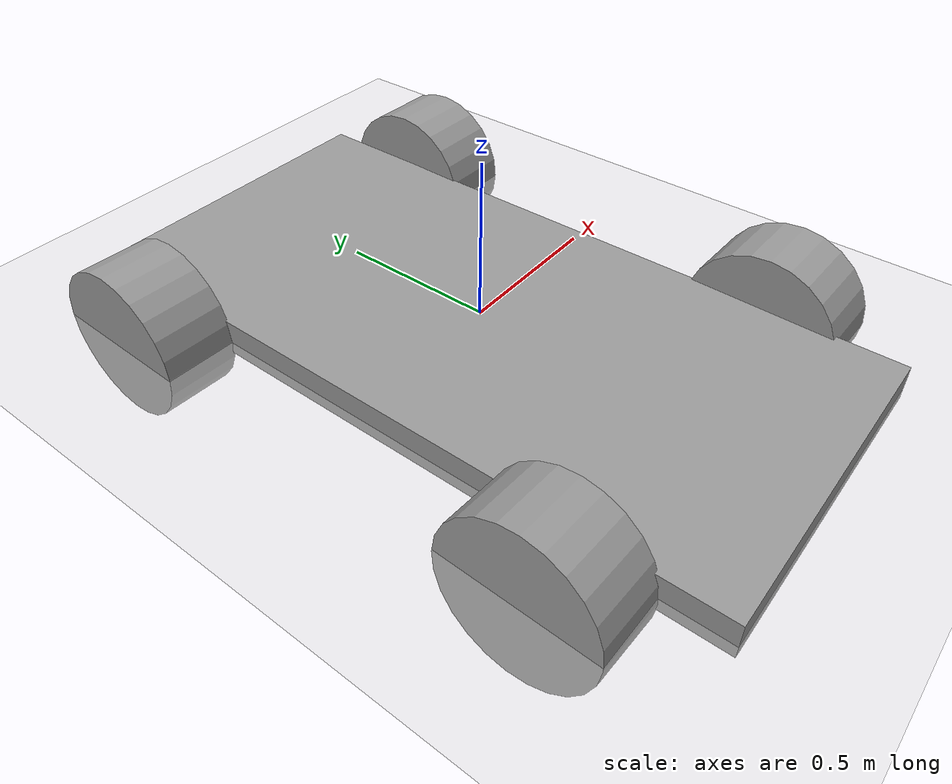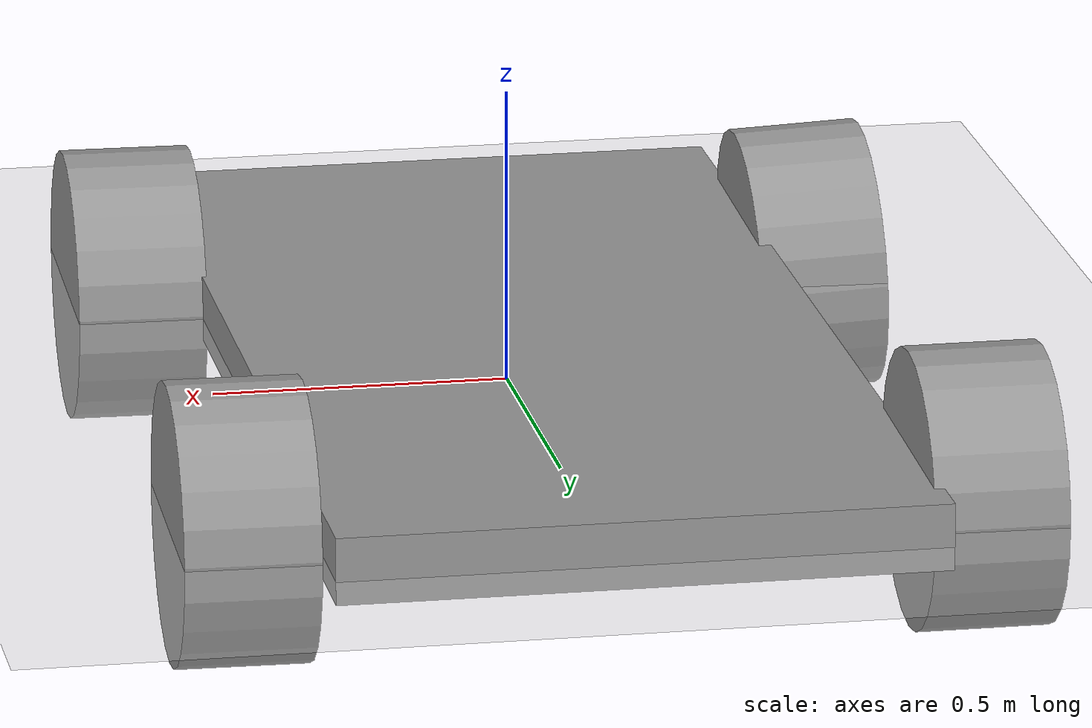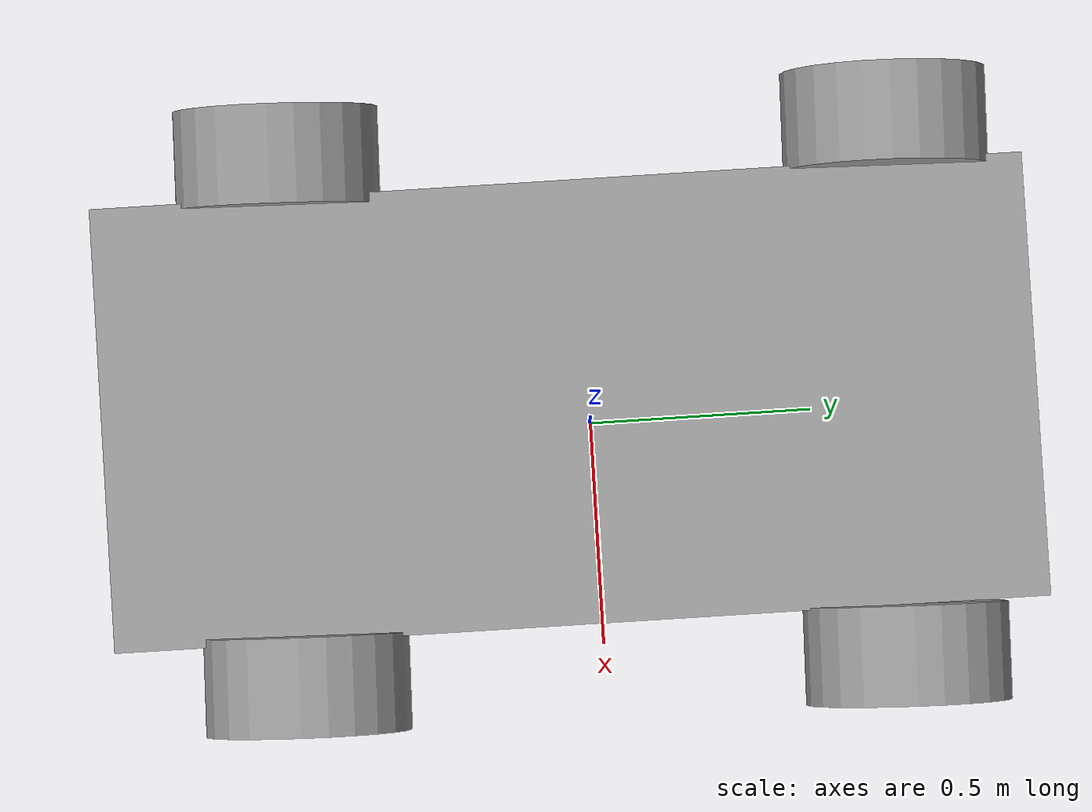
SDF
<sdf version='1.4'>
  <world name='default'>
    <!-- A global light source -->
    <include>
      <uri>model://sun</uri>
    </include>

    <!-- A ground plane -->
    <include>
      <uri>model://ground_plane</uri>
    </include>

    <physics type="ode">
      <real_time_update_rate>1000.0</real_time_update_rate>
      <max_step_size>0.001</max_step_size>
      <real_time_factor>1</real_time_factor>
      <ode>
        <solver>
          <type>quick</type>
          <iters>150</iters>
          <precon_iters>0</precon_iters>
          <sor>1.400000</sor>
          <use_dynamic_moi_rescaling>1</use_dynamic_moi_rescaling>
        </solver>
        <constraints>
          <cfm>0.00001</cfm>
          <erp>0.2</erp>
          <contact_max_correcting_vel>2000.000000</contact_max_correcting_vel>
          <contact_surface_layer>0.01000</contact_surface_layer>
        </constraints>
      </ode>
    </physics>

    <!-- Load world -->
    <include>
      <uri>model://bfl_1</uri>
    </include>

    <scene>
      <ambient>0.4 0.4 0.4 1</ambient>
      <background>0.7 0.7 0.7 1</background>
      <shadows>true</shadows>
    </scene>

    <gui fullscreen='0'>
      <camera name='user_camera'>
        <pose>0.8 0.0 12.0 0 1.5708 0</pose>
        <view_controller>orbit</view_controller>
      </camera>
    </gui>
  </world>
</sdf>

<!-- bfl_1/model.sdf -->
<sdf version='1.5'>
  <model name='bfl_1'>
    <link name='link_0'>
      <inertial>
        <mass>0.234905</mass>
        <inertia>
          <ixx>0.086962</ixx>
          <ixy>0</ixy>
          <ixz>0</ixz>
          <iyy>0.0198193</iyy>
          <iyz>0</iyz>
          <izz>0.106294</izz>
        </inertia>
        <pose>0 0 0 0 -0 0</pose>
      </inertial>
      <pose>-0.047576 -0.044861 0.014437 0 -0 0</pose>
      <visual name='visual'>
        <pose>0 0 0 0 -0 0</pose>
        <geometry>
          <box>
            <size>1 2.10474 0.111615</size>
          </box>
        </geometry>
        <material>
          <lighting>1</lighting>
          <script>
            <uri>file://media/materials/scripts/gazebo.material</uri>
            <name>Gazebo/Grey</name>
          </script>
          <shader type='pixel'/>
          <emissive>0 0 0 1</emissive>
        </material>
        <transparency>0</transparency>
        <cast_shadows>1</cast_shadows>
      </visual>
      <collision name='collision'>
        <laser_retro>0</laser_retro>
        <max_contacts>10</max_contacts>
        <pose>0 0 0 0 -0 0</pose>
        <geometry>
          <box>
            <size>1 2.10474 0.111615</size>
          </box>
        </geometry>
        <surface>
          <friction>
            <ode>
              <mu>1</mu>
              <mu2>1</mu2>
              <fdir1>0 0 0</fdir1>
              <slip1>0</slip1>
              <slip2>0</slip2>
            </ode>
            <torsional>
              <coefficient>1</coefficient>
              <patch_radius>0</patch_radius>
              <surface_radius>0</surface_radius>
              <use_patch_radius>1</use_patch_radius>
              <ode>
                <slip>0</slip>
              </ode>
            </torsional>
          </friction>
          <bounce>
            <restitution_coefficient>0</restitution_coefficient>
            <threshold>1e+06</threshold>
          </bounce>
          <contact>
            <collide_without_contact>0</collide_without_contact>
            <collide_without_contact_bitmask>1</collide_without_contact_bitmask>
            <collide_bitmask>1</collide_bitmask>
            <ode>
              <soft_cfm>0</soft_cfm>
              <soft_erp>0.2</soft_erp>
              <kp>1e+13</kp>
              <kd>1</kd>
              <max_vel>0.01</max_vel>
              <min_depth>0</min_depth>
            </ode>
            <bullet>
              <split_impulse>1</split_impulse>
              <split_impulse_penetration_threshold>-0.01</split_impulse_penetration_threshold>
              <soft_cfm>0</soft_cfm>
              <soft_erp>0.2</soft_erp>
              <kp>1e+13</kp>
              <kd>1</kd>
            </bullet>
          </contact>
        </surface>
      </collision>
    </link>
    <link name='link_1'>
      <inertial>
        <mass>0.0479168</mass>
        <inertia>
          <ixx>0.000844516</ixx>
          <ixy>0</ixy>
          <ixz>0</ixz>
          <iyy>0.000844516</iyy>
          <iyz>0</iyz>
          <izz>0.00129966</izz>
        </inertia>
        <pose>0 0 0 0 -0 0</pose>
      </inertial>
      <pose>0.549715 -0.673422 0.000441 -1.57019 -0.006613 1.54546</pose>
      <visual name='visual'>
        <pose>0 0 0 0 -0 0</pose>
        <geometry>
          <cylinder>
            <radius>0.232909</radius>
            <length>0.220806</length>
          </cylinder>
        </geometry>
        <material>
          <lighting>1</lighting>
          <script>
            <uri>file://media/materials/scripts/gazebo.material</uri>
            <name>Gazebo/Grey</name>
          </script>
          <shader type='pixel'/>
          <emissive>0 0 0 1</emissive>
        </material>
        <transparency>0</transparency>
        <cast_shadows>1</cast_shadows>
      </visual>
      <collision name='collision'>
        <laser_retro>0</laser_retro>
        <max_contacts>10</max_contacts>
        <pose>0 0 0 0 -0 0</pose>
        <geometry>
          <cylinder>
            <radius>0.232909</radius>
            <length>0.220806</length>
          </cylinder>
        </geometry>
        <surface>
          <friction>
            <ode>
              <mu>1</mu>
              <mu2>1</mu2>
              <fdir1>0 0 0</fdir1>
              <slip1>0</slip1>
              <slip2>0</slip2>
            </ode>
            <torsional>
              <coefficient>1</coefficient>
              <patch_radius>0</patch_radius>
              <surface_radius>0</surface_radius>
              <use_patch_radius>1</use_patch_radius>
              <ode>
                <slip>0</slip>
              </ode>
            </torsional>
          </friction>
          <bounce>
            <restitution_coefficient>0</restitution_coefficient>
            <threshold>1e+06</threshold>
          </bounce>
          <contact>
            <collide_without_contact>0</collide_without_contact>
            <collide_without_contact_bitmask>1</collide_without_contact_bitmask>
            <collide_bitmask>1</collide_bitmask>
            <ode>
              <soft_cfm>0</soft_cfm>
              <soft_erp>0.2</soft_erp>
              <kp>1e+13</kp>
              <kd>1</kd>
              <max_vel>0.01</max_vel>
              <min_depth>0</min_depth>
            </ode>
            <bullet>
              <split_impulse>1</split_impulse>
              <split_impulse_penetration_threshold>-0.01</split_impulse_penetration_threshold>
              <soft_cfm>0</soft_cfm>
              <soft_erp>0.2</soft_erp>
              <kp>1e+13</kp>
              <kd>1</kd>
            </bullet>
          </contact>
        </surface>
      </collision>
    </link>
    <link name='link_1_clone'>
      <inertial>
        <mass>0.0479168</mass>
        <inertia>
          <ixx>0.000844516</ixx>
          <ixy>0</ixy>
          <ixz>0</ixz>
          <iyy>0.000844516</iyy>
          <iyz>0</iyz>
          <izz>0.00129966</izz>
        </inertia>
        <pose>0 0 0 0 -0 0</pose>
      </inertial>
      <pose>-0.646206 -0.674703 -0.01576 1.6204 -0.006613 1.54546</pose>
      <visual name='visual'>
        <pose>0 0 0 0 -0 0</pose>
        <geometry>
          <cylinder>
            <radius>0.232909</radius>
            <length>0.220806</length>
          </cylinder>
        </geometry>
        <material>
          <lighting>1</lighting>
          <script>
            <uri>file://media/materials/scripts/gazebo.material</uri>
            <name>Gazebo/Grey</name>
          </script>
          <shader type='pixel'/>
          <emissive>0 0 0 1</emissive>
        </material>
        <transparency>0</transparency>
        <cast_shadows>1</cast_shadows>
      </visual>
      <collision name='collision'>
        <laser_retro>0</laser_retro>
        <max_contacts>10</max_contacts>
        <pose>0 0 0 0 -0 0</pose>
        <geometry>
          <cylinder>
            <radius>0.232909</radius>
            <length>0.220806</length>
          </cylinder>
        </geometry>
        <surface>
          <friction>
            <ode>
              <mu>1</mu>
              <mu2>1</mu2>
              <fdir1>0 0 0</fdir1>
              <slip1>0</slip1>
              <slip2>0</slip2>
            </ode>
            <torsional>
              <coefficient>1</coefficient>
              <patch_radius>0</patch_radius>
              <surface_radius>0</surface_radius>
              <use_patch_radius>1</use_patch_radius>
              <ode>
                <slip>0</slip>
              </ode>
            </torsional>
          </friction>
          <bounce>
            <restitution_coefficient>0</restitution_coefficient>
            <threshold>1e+06</threshold>
          </bounce>
          <contact>
            <collide_without_contact>0</collide_without_contact>
            <collide_without_contact_bitmask>1</collide_without_contact_bitmask>
            <collide_bitmask>1</collide_bitmask>
            <ode>
              <soft_cfm>0</soft_cfm>
              <soft_erp>0.2</soft_erp>
              <kp>1e+13</kp>
              <kd>1</kd>
              <max_vel>0.01</max_vel>
              <min_depth>0</min_depth>
            </ode>
            <bullet>
              <split_impulse>1</split_impulse>
              <split_impulse_penetration_threshold>-0.01</split_impulse_penetration_threshold>
              <soft_cfm>0</soft_cfm>
              <soft_erp>0.2</soft_erp>
              <kp>1e+13</kp>
              <kd>1</kd>
            </bullet>
          </contact>
        </surface>
      </collision>
    </link>
    <link name='link_1_clone_0'>
      <inertial>
        <mass>0.0479168</mass>
        <inertia>
          <ixx>0.000844516</ixx>
          <ixy>0</ixy>
          <ixz>0</ixz>
          <iyy>0.000844516</iyy>
          <iyz>0</iyz>
          <izz>0.00129966</izz>
        </inertia>
        <pose>0 0 0 0 -0 0</pose>
      </inertial>
      <pose>-0.647193 0.708773 0.000441 1.5803 -0.006613 1.54546</pose>
      <visual name='visual'>
        <pose>0 0 0 0 -0 0</pose>
        <geometry>
          <cylinder>
            <radius>0.232909</radius>
            <length>0.220806</length>
          </cylinder>
        </geometry>
        <material>
          <lighting>1</lighting>
          <script>
            <uri>file://media/materials/scripts/gazebo.material</uri>
            <name>Gazebo/Grey</name>
          </script>
          <shader type='pixel'/>
          <emissive>0 0 0 1</emissive>
        </material>
        <transparency>0</transparency>
        <cast_shadows>1</cast_shadows>
      </visual>
      <collision name='collision'>
        <laser_retro>0</laser_retro>
        <max_contacts>10</max_contacts>
        <pose>0 0 0 0 -0 0</pose>
        <geometry>
          <cylinder>
            <radius>0.232909</radius>
            <length>0.220806</length>
          </cylinder>
        </geometry>
        <surface>
          <friction>
            <ode>
              <mu>1</mu>
              <mu2>1</mu2>
              <fdir1>0 0 0</fdir1>
              <slip1>0</slip1>
              <slip2>0</slip2>
            </ode>
            <torsional>
              <coefficient>1</coefficient>
              <patch_radius>0</patch_radius>
              <surface_radius>0</surface_radius>
              <use_patch_radius>1</use_patch_radius>
              <ode>
                <slip>0</slip>
              </ode>
            </torsional>
          </friction>
          <bounce>
            <restitution_coefficient>0</restitution_coefficient>
            <threshold>1e+06</threshold>
          </bounce>
          <contact>
            <collide_without_contact>0</collide_without_contact>
            <collide_without_contact_bitmask>1</collide_without_contact_bitmask>
            <collide_bitmask>1</collide_bitmask>
            <ode>
              <soft_cfm>0</soft_cfm>
              <soft_erp>0.2</soft_erp>
              <kp>1e+13</kp>
              <kd>1</kd>
              <max_vel>0.01</max_vel>
              <min_depth>0</min_depth>
            </ode>
            <bullet>
              <split_impulse>1</split_impulse>
              <split_impulse_penetration_threshold>-0.01</split_impulse_penetration_threshold>
              <soft_cfm>0</soft_cfm>
              <soft_erp>0.2</soft_erp>
              <kp>1e+13</kp>
              <kd>1</kd>
            </bullet>
          </contact>
        </surface>
      </collision>
    </link>
    <link name='link_1_clone_1'>
      <inertial>
        <mass>0.0479168</mass>
        <inertia>
          <ixx>0.000844516</ixx>
          <ixy>0</ixy>
          <ixz>0</ixz>
          <iyy>0.000844516</iyy>
          <iyz>0</iyz>
          <izz>0.00129966</izz>
        </inertia>
        <pose>0 0 0 0 -0 0</pose>
      </inertial>
      <pose>0.563655 0.684209 0.000441 -1.57019 -0.006613 1.54546</pose>
      <visual name='visual'>
        <pose>0 0 0 0 -0 0</pose>
        <geometry>
          <cylinder>
            <radius>0.232909</radius>
            <length>0.220806</length>
          </cylinder>
        </geometry>
        <material>
          <lighting>1</lighting>
          <script>
            <uri>file://media/materials/scripts/gazebo.material</uri>
            <name>Gazebo/Grey</name>
          </script>
          <shader type='pixel'/>
          <emissive>0 0 0 1</emissive>
        </material>
        <transparency>0</transparency>
        <cast_shadows>1</cast_shadows>
      </visual>
      <collision name='collision'>
        <laser_retro>0</laser_retro>
        <max_contacts>10</max_contacts>
        <pose>0 0 0 0 -0 0</pose>
        <geometry>
          <cylinder>
            <radius>0.232909</radius>
            <length>0.220806</length>
          </cylinder>
        </geometry>
        <surface>
          <friction>
            <ode>
              <mu>1</mu>
              <mu2>1</mu2>
              <fdir1>0 0 0</fdir1>
              <slip1>0</slip1>
              <slip2>0</slip2>
            </ode>
            <torsional>
              <coefficient>1</coefficient>
              <patch_radius>0</patch_radius>
              <surface_radius>0</surface_radius>
              <use_patch_radius>1</use_patch_radius>
              <ode>
                <slip>0</slip>
              </ode>
            </torsional>
          </friction>
          <bounce>
            <restitution_coefficient>0</restitution_coefficient>
            <threshold>1e+06</threshold>
          </bounce>
          <contact>
            <collide_without_contact>0</collide_without_contact>
            <collide_without_contact_bitmask>1</collide_without_contact_bitmask>
            <collide_bitmask>1</collide_bitmask>
            <ode>
              <soft_cfm>0</soft_cfm>
              <soft_erp>0.2</soft_erp>
              <kp>1e+13</kp>
              <kd>1</kd>
              <max_vel>0.01</max_vel>
              <min_depth>0</min_depth>
            </ode>
            <bullet>
              <split_impulse>1</split_impulse>
              <split_impulse_penetration_threshold>-0.01</split_impulse_penetration_threshold>
              <soft_cfm>0</soft_cfm>
              <soft_erp>0.2</soft_erp>
              <kp>1e+13</kp>
              <kd>1</kd>
            </bullet>
          </contact>
        </surface>
      </collision>
    </link>
    <joint name='link_0_JOINT_0' type='revolute'>
      <parent>link_0</parent>
      <child>link_1</child>
      <pose>0 0 0 0 -0 0</pose>
      <axis>
        <xyz>0 0 1</xyz>
        <limit>
          <lower>-1.79769e+308</lower>
          <upper>1.79769e+308</upper>
          <effort>-1</effort>
          <velocity>-1</velocity>
        </limit>
        <dynamics>
          <spring_reference>0</spring_reference>
          <spring_stiffness>0</spring_stiffness>
          <damping>0</damping>
        </dynamics>
      </axis>
      <physics>
        <ode>
          <limit>
            <cfm>0</cfm>
            <erp>0.2</erp>
          </limit>
          <suspension>
            <cfm>0</cfm>
            <erp>0.2</erp>
          </suspension>
        </ode>
      </physics>
    </joint>
    <joint name='link_0_JOINT_1' type='revolute'>
      <parent>link_0</parent>
      <child>link_1_clone</child>
      <pose>0 0 0 0 -0.01 0</pose>
      <axis>
        <xyz>0 0 1</xyz>
        <limit>
          <lower>-1.79769e+308</lower>
          <upper>1.79769e+308</upper>
          <effort>-1</effort>
          <velocity>-1</velocity>
        </limit>
        <dynamics>
          <spring_reference>0</spring_reference>
          <spring_stiffness>0</spring_stiffness>
          <damping>0</damping>
        </dynamics>
      </axis>
      <physics>
        <ode>
          <limit>
            <cfm>0</cfm>
            <erp>0.2</erp>
          </limit>
          <suspension>
            <cfm>0</cfm>
            <erp>0.2</erp>
          </suspension>
        </ode>
      </physics>
    </joint>
    <joint name='link_0_JOINT_2' type='revolute'>
      <parent>link_0</parent>
      <child>link_1_clone_0</child>
      <pose>0 0 0 0 -0 0</pose>
      <axis>
        <xyz>0 0 1</xyz>
        <limit>
          <lower>-1.79769e+308</lower>
          <upper>1.79769e+308</upper>
          <effort>-1</effort>
          <velocity>-1</velocity>
        </limit>
        <dynamics>
          <spring_reference>0</spring_reference>
          <spring_stiffness>0</spring_stiffness>
          <damping>0</damping>
        </dynamics>
      </axis>
      <physics>
        <ode>
          <limit>
            <cfm>0</cfm>
            <erp>0.2</erp>
          </limit>
          <suspension>
            <cfm>0</cfm>
            <erp>0.2</erp>
          </suspension>
        </ode>
      </physics>
    </joint>
    <joint name='link_0_JOINT_3' type='revolute'>
      <parent>link_0</parent>
      <child>link_1_clone_1</child>
      <pose>0 0 0 0 -0 0</pose>
      <axis>
        <xyz>1 0 0</xyz>
        <limit>
          <lower>-1.79769e+308</lower>
          <upper>1.79769e+308</upper>
          <effort>-1</effort>
          <velocity>-1</velocity>
        </limit>
        <dynamics>
          <spring_reference>0</spring_reference>
          <spring_stiffness>0</spring_stiffness>
          <damping>0</damping>
        </dynamics>
      </axis>
      <physics>
        <ode>
          <limit>
            <cfm>0</cfm>
            <erp>0.2</erp>
          </limit>
          <suspension>
            <cfm>0</cfm>
            <erp>0.2</erp>
          </suspension>
        </ode>
      </physics>
    </joint>
    <static>0</static>
    <allow_auto_disable>1</allow_auto_disable>
  </model>
</sdf>
